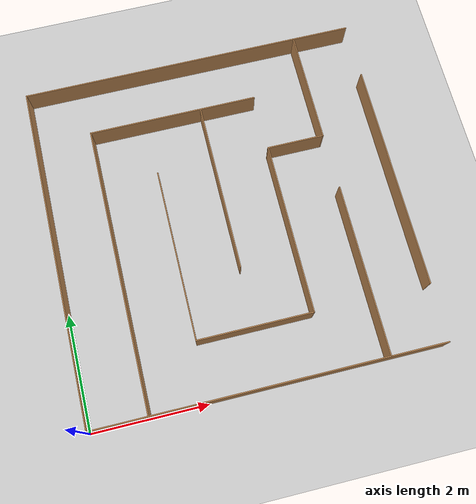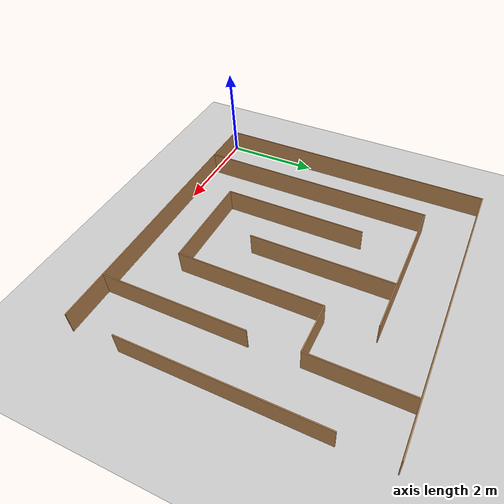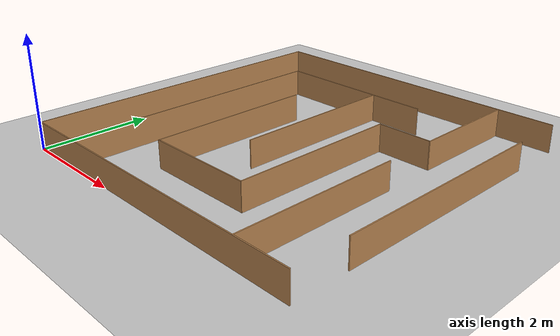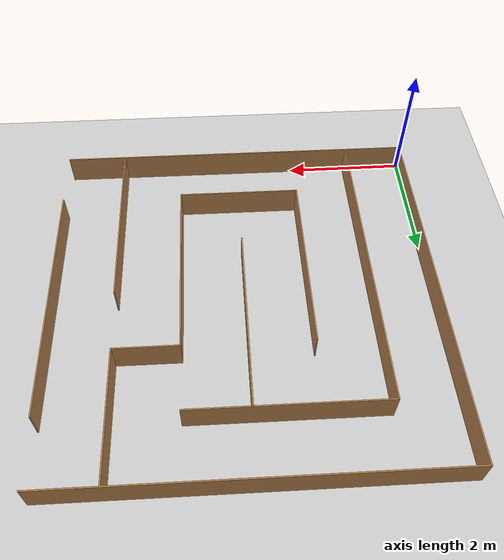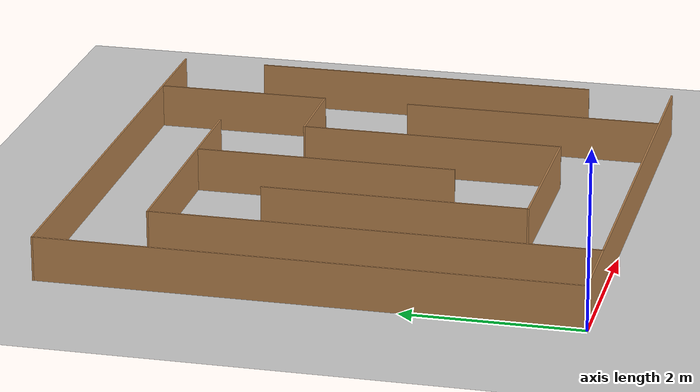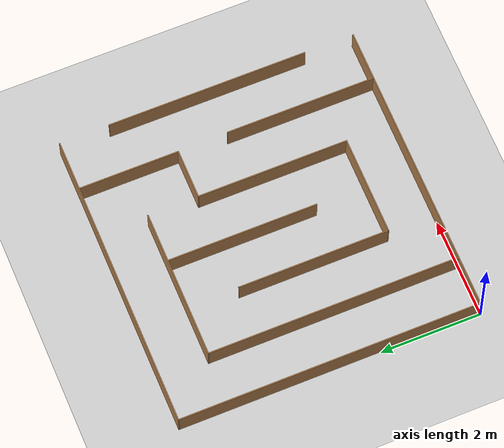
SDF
<sdf version="1.6">
 <world name="default">
  <light name="sun" type="directional">
   <pose>0 0 10 0 -0 0</pose>
   <diffuse>0.8 0.8 0.8 1</diffuse>
   <specular>0.2 0.2 0.2 1</specular>
   <attenuation>
    <range>1000</range>
    <constant>0.9</constant>
    <linear>0.01</linear>
    <quadratic>0.001</quadratic>
   </attenuation>
   <direction>-0.5 0.1 -0.9</direction>
  </light>
  <model name="ground_plane">
   <static>1</static>
   <link name="link">
    <collision name="collision">
     <geometry><plane><normal>0 0 1</normal><size>100 100</size></plane></geometry>
     <surface>
      <contact><collide_bitmask>65535</collide_bitmask></contact>
      <friction><ode><mu>100</mu><mu2>50</mu2></ode></friction>
     </surface>
    </collision>
    <visual name="visual">
     <cast_shadows>0</cast_shadows>
     <geometry><plane><normal>0 0 1</normal><size>100 100</size></plane></geometry>
     <material>
      <script><uri>file://media/materials/scripts/gazebo.material</uri><name>Gazebo/Grey</name></script>
     </material>
    </visual>
   </link>
  </model>
  <gravity>0 0 -9.8</gravity>
  <magnetic_field>6e-06 2.3e-05 -4.2e-05</magnetic_field>
  <atmosphere type="adiabatic"/>
  <physics name="default_physics" default="0" type="ode">
   <max_step_size>0.001</max_step_size>
   <real_time_factor>1</real_time_factor>
   <real_time_update_rate>1000</real_time_update_rate>
  </physics>
  <scene><ambient>0.4 0.4 0.4 1</ambient><background>0.7 0.7 0.7 1</background><shadows>1</shadows></scene>
  <audio><device>default</device></audio>
  <spherical_coordinates>
   <surface_model>EARTH_WGS84</surface_model>
   <latitude_deg>0</latitude_deg>
   <longitude_deg>0</longitude_deg>
   <elevation>0</elevation>
   <heading_deg>0</heading_deg>
  </spherical_coordinates>
  <model name="circuit3">
   <pose>3.01604 3.00576 0 0 -0 0</pose>
   <link name="Wall_0">
    <collision name="Wall_0_Collision">
     <geometry><box><size>6 0.02 0.5</size></box></geometry>
     <pose>0 0 0.25 0 -0 0</pose>
    </collision>
    <visual name="Wall_0_Visual">
     <pose>0 0 0.25 0 -0 0</pose>
     <geometry><box><size>6 0.02 0.5</size></box></geometry>
     <material>
      <script><uri>file://media/materials/scripts/gazebo.material</uri><name>Gazebo/Wood</name></script>
      <ambient>1 1 1 1</ambient>
     </material>
     <meta><layer>0</layer></meta>
    </visual>
    <pose>-0.002027 -2.99023 0 0 -0 0</pose>
   </link>
   <link name="Wall_10">
    <collision name="Wall_10_Collision">
     <geometry><box><size>3 0.02 0.5</size></box></geometry>
     <pose>0 0 0.25 0 -0 0</pose>
    </collision>
    <visual name="Wall_10_Visual">
     <pose>0 0 0.25 0 -0 0</pose>
     <geometry><box><size>3 0.02 0.5</size></box></geometry>
     <material>
      <script><uri>file://media/materials/scripts/gazebo.material</uri><name>Gazebo/Wood</name></script>
      <ambient>1 1 1 1</ambient>
     </material>
     <meta><layer>0</layer></meta>
    </visual>
    <pose>-0.509249 2.00482 0 0 -0 0</pose>
   </link>
   <link name="Wall_12">
    <collision name="Wall_12_Collision">
     <geometry><box><size>3 0.02 0.5</size></box></geometry>
     <pose>0 0 0.25 0 -0 0</pose>
    </collision>
    <visual name="Wall_12_Visual">
     <pose>0 0 0.25 0 -0 0</pose>
     <geometry><box><size>3 0.02 0.5</size></box></geometry>
     <material>
      <script><uri>file://media/materials/scripts/gazebo.material</uri><name>Gazebo/Wood</name></script>
      <ambient>1 1 1 1</ambient>
     </material>
     <meta><layer>0</layer></meta>
    </visual>
    <pose>-0.00486 0.514774 0 0 -0 -1.5708</pose>
   </link>
   <link name="Wall_14">
    <collision name="Wall_14_Collision">
     <geometry><box><size>3 0.02 0.5</size></box></geometry>
     <pose>0 0 0.25 0 -0 0</pose>
    </collision>
    <visual name="Wall_14_Visual">
     <pose>0 0 0.25 0 -0 0</pose>
     <geometry><box><size>3 0.02 0.5</size></box></geometry>
     <material>
      <script><uri>file://media/materials/scripts/gazebo.material</uri><name>Gazebo/Wood</name></script>
      <ambient>1 1 1 1</ambient>
     </material>
     <meta><layer>0</layer></meta>
    </visual>
    <pose>-1.00244 -0.501621 0 0 -0 -1.5708</pose>
   </link>
   <link name="Wall_18">
    <collision name="Wall_18_Collision">
     <geometry><box><size>2 0.02 0.5</size></box></geometry>
     <pose>0 0 0.25 0 -0 0</pose>
    </collision>
    <visual name="Wall_18_Visual">
     <pose>0 0 0.25 0 -0 0</pose>
     <geometry><box><size>2 0.02 0.5</size></box></geometry>
     <material>
      <script><uri>file://media/materials/scripts/gazebo.material</uri><name>Gazebo/Wood</name></script>
      <ambient>1 1 1 1</ambient>
     </material>
     <meta><layer>0</layer></meta>
    </visual>
    <pose>-0.012571 -2.0042 0 0 -0 0</pose>
   </link>
   <link name="Wall_2">
    <collision name="Wall_2_Collision">
     <geometry><box><size>6 0.02 0.5</size></box></geometry>
     <pose>0 0 0.25 0 -0 0</pose>
    </collision>
    <visual name="Wall_2_Visual">
     <pose>0 0 0.25 0 -0 0</pose>
     <geometry><box><size>6 0.02 0.5</size></box></geometry>
     <material>
      <script><uri>file://media/materials/scripts/gazebo.material</uri><name>Gazebo/Wood</name></script>
      <ambient>1 1 1 1</ambient>
     </material>
     <meta><layer>0</layer></meta>
    </visual>
    <pose>-2.99272 -0.000659 0 0 -0 -1.5708</pose>
   </link>
   <link name="Wall_20">
    <collision name="Wall_20_Collision">
     <geometry><box><size>3 0.02 0.5</size></box></geometry>
     <pose>0 0 0.25 0 -0 0</pose>
    </collision>
    <visual name="Wall_20_Visual">
     <pose>0 0 0.25 0 -0 0</pose>
     <geometry><box><size>3 0.02 0.5</size></box></geometry>
     <material>
      <script><uri>file://media/materials/scripts/gazebo.material</uri><name>Gazebo/Wood</name></script>
      <ambient>1 1 1 1</ambient>
     </material>
     <meta><layer>0</layer></meta>
    </visual>
    <pose>0.986944 -0.513562 0 0 -0 -1.5708</pose>
   </link>
   <link name="Wall_22">
    <collision name="Wall_22_Collision">
     <geometry><box><size>1 0.02 0.5</size></box></geometry>
     <pose>0 0 0.25 0 -0 0</pose>
    </collision>
    <visual name="Wall_22_Visual">
     <pose>0 0 0.25 0 -0 0</pose>
     <geometry><box><size>1 0.02 0.5</size></box></geometry>
     <material>
      <script><uri>file://media/materials/scripts/gazebo.material</uri><name>Gazebo/Wood</name></script>
      <ambient>1 1 1 1</ambient>
     </material>
     <meta><layer>0</layer></meta>
    </visual>
    <pose>1.47692 0.996536 0 0 -0 0</pose>
   </link>
   <link name="Wall_24">
    <collision name="Wall_24_Collision">
     <geometry><box><size>2 0.02 0.5</size></box></geometry>
     <pose>0 0 0.25 0 -0 0</pose>
    </collision>
    <visual name="Wall_24_Visual">
     <pose>0 0 0.25 0 -0 0</pose>
     <geometry><box><size>2 0.02 0.5</size></box></geometry>
     <material>
      <script><uri>file://media/materials/scripts/gazebo.material</uri><name>Gazebo/Wood</name></script>
      <ambient>1 1 1 1</ambient>
     </material>
     <meta><layer>0</layer></meta>
    </visual>
    <pose>1.98493 1.98701 0 0 -0 -1.5708</pose>
   </link>
   <link name="Wall_26">
    <collision name="Wall_26_Collision">
     <geometry><box><size>3 0.02 0.5</size></box></geometry>
     <pose>0 0 0.25 0 -0 0</pose>
    </collision>
    <visual name="Wall_26_Visual">
     <pose>0 0 0.25 0 -0 0</pose>
     <geometry><box><size>3 0.02 0.5</size></box></geometry>
     <material>
      <script><uri>file://media/materials/scripts/gazebo.material</uri><name>Gazebo/Wood</name></script>
      <ambient>1 1 1 1</ambient>
     </material>
     <meta><layer>0</layer></meta>
    </visual>
    <pose>2.00073 -1.49941 0 0 -0 -1.5708</pose>
   </link>
   <link name="Wall_4">
    <collision name="Wall_4_Collision">
     <geometry><box><size>6 0.02 0.5</size></box></geometry>
     <pose>0 0 0.25 0 -0 0</pose>
    </collision>
    <visual name="Wall_4_Visual">
     <pose>0 0 0.25 0 -0 0</pose>
     <geometry><box><size>6 0.02 0.5</size></box></geometry>
     <material>
      <script><uri>file://media/materials/scripts/gazebo.material</uri><name>Gazebo/Wood</name></script>
      <ambient>1 1 1 1</ambient>
     </material>
     <meta><layer>0</layer></meta>
    </visual>
    <pose>-0.002944 2.99066 0 0 -0 0</pose>
   </link>
   <link name="Wall_6">
    <collision name="Wall_6_Collision">
     <geometry><box><size>4 0.02 0.5</size></box></geometry>
     <pose>0 0 0.25 0 -0 0</pose>
    </collision>
    <visual name="Wall_6_Visual">
     <pose>0 0 0.25 0 -0 0</pose>
     <geometry><box><size>4 0.02 0.5</size></box></geometry>
     <material>
      <script><uri>file://media/materials/scripts/gazebo.material</uri><name>Gazebo/Wood</name></script>
      <ambient>1 1 1 1</ambient>
     </material>
     <meta><layer>0</layer></meta>
    </visual>
    <pose>2.99294 0.000567 0 0 -0 -1.5708</pose>
   </link>
   <link name="Wall_8">
    <collision name="Wall_8_Collision">
     <geometry><box><size>5 0.02 0.5</size></box></geometry>
     <pose>0 0 0.25 0 -0 0</pose>
    </collision>
    <visual name="Wall_8_Visual">
     <pose>0 0 0.25 0 -0 0</pose>
     <geometry><box><size>5 0.02 0.5</size></box></geometry>
     <material>
      <script><uri>file://media/materials/scripts/gazebo.material</uri><name>Gazebo/Wood</name></script>
      <ambient>1 1 1 1</ambient>
     </material>
     <meta><layer>0</layer></meta>
    </visual>
    <pose>-1.99924 -0.497058 0 0 -0 -1.5708</pose>
   </link>
   <static>1</static>
  </model>
 </world>
</sdf>
